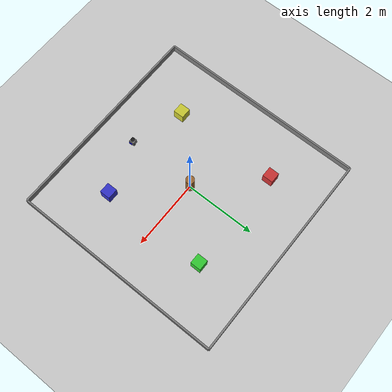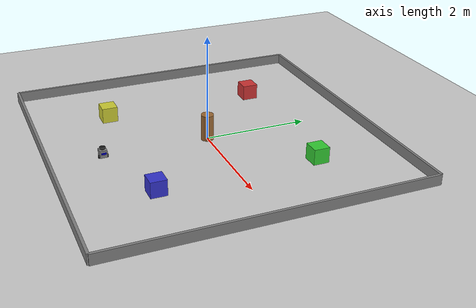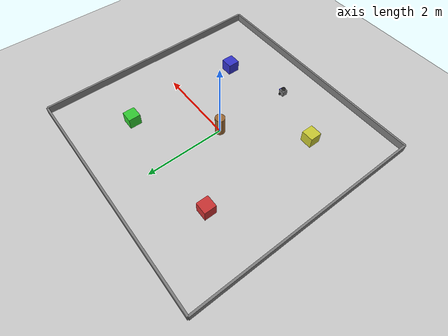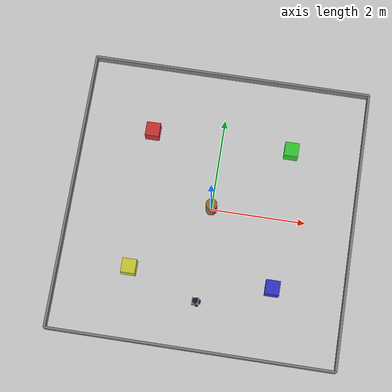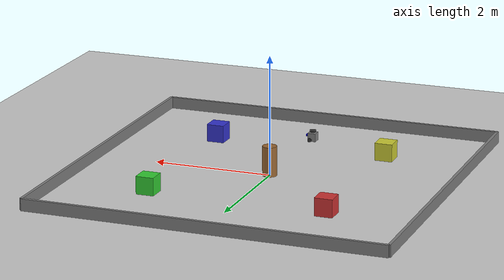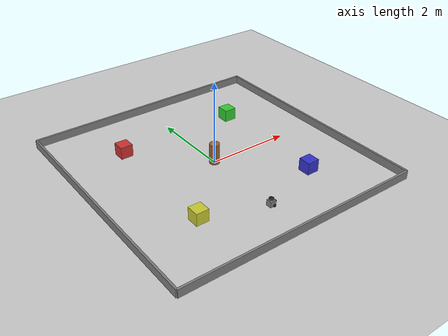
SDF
<?xml version="1.0" ?>
<sdf version="1.8">
  <world name="turtlebot3_world">

    <!-- Physics: 50 Hz is sufficient for TurtleBot3 at NAV2 speeds (0.2-0.5 m/s).
         Halving from 100 Hz saves ~40% of physics thread CPU. -->
    <physics name="50hz" type="ignored">
      <max_step_size>0.02</max_step_size>
      <real_time_factor>1.0</real_time_factor>
      <real_time_update_rate>50</real_time_update_rate>
    </physics>

    <!-- World system plugins -->
    <plugin filename="gz-sim-physics-system"             name="gz::sim::systems::Physics"/>
    <plugin filename="gz-sim-scene-broadcaster-system"   name="gz::sim::systems::SceneBroadcaster"/>
    <plugin filename="gz-sim-user-commands-system"       name="gz::sim::systems::UserCommands"/>
    <!-- Sensors system: must use ignition- prefix for ign gazebo 6 plugin search path -->
    <plugin filename="ignition-gazebo-sensors-system"    name="ignition::gazebo::systems::Sensors">
      <render_engine>ogre2</render_engine>
    </plugin>
    <plugin filename="ignition-gazebo-imu-system"        name="ignition::gazebo::systems::Imu"/>
    <plugin filename="gz-sim-contact-system"             name="gz::sim::systems::Contact"/>

    <!-- Lighting -->
    <light type="directional" name="sun">
      <cast_shadows>true</cast_shadows>
      <pose>0 0 10 0 0 0</pose>
      <diffuse>0.8 0.8 0.8 1</diffuse>
      <specular>0.2 0.2 0.2 1</specular>
      <direction>-0.5 0.1 -0.9</direction>
    </light>

    <!-- Ground plane -->
    <model name="ground_plane">
      <static>true</static>
      <link name="link">
        <collision name="collision">
          <geometry><plane><normal>0 0 1</normal><size>100 100</size></plane></geometry>
        </collision>
        <visual name="visual">
          <geometry><plane><normal>0 0 1</normal><size>100 100</size></plane></geometry>
          <material>
            <ambient>0.8 0.8 0.8 1</ambient>
            <diffuse>0.8 0.8 0.8 1</diffuse>
          </material>
        </visual>
      </link>
    </model>

    <!-- Outer walls: 6m x 6m room -->
    <model name="wall_south">
      <static>true</static>
      <pose>0 -3 0.1 0 0 0</pose>
      <link name="link">
        <collision name="col"><geometry><box><size>6 0.05 0.2</size></box></geometry></collision>
        <visual name="vis">
          <geometry><box><size>6 0.05 0.2</size></box></geometry>
          <material><ambient>0.3 0.3 0.3 1</ambient><diffuse>0.5 0.5 0.5 1</diffuse></material>
        </visual>
      </link>
    </model>

    <model name="wall_north">
      <static>true</static>
      <pose>0 3 0.1 0 0 0</pose>
      <link name="link">
        <collision name="col"><geometry><box><size>6 0.05 0.2</size></box></geometry></collision>
        <visual name="vis">
          <geometry><box><size>6 0.05 0.2</size></box></geometry>
          <material><ambient>0.3 0.3 0.3 1</ambient><diffuse>0.5 0.5 0.5 1</diffuse></material>
        </visual>
      </link>
    </model>

    <model name="wall_west">
      <static>true</static>
      <pose>-3 0 0.1 0 0 1.5708</pose>
      <link name="link">
        <collision name="col"><geometry><box><size>6 0.05 0.2</size></box></geometry></collision>
        <visual name="vis">
          <geometry><box><size>6 0.05 0.2</size></box></geometry>
          <material><ambient>0.3 0.3 0.3 1</ambient><diffuse>0.5 0.5 0.5 1</diffuse></material>
        </visual>
      </link>
    </model>

    <model name="wall_east">
      <static>true</static>
      <pose>3 0 0.1 0 0 1.5708</pose>
      <link name="link">
        <collision name="col"><geometry><box><size>6 0.05 0.2</size></box></geometry></collision>
        <visual name="vis">
          <geometry><box><size>6 0.05 0.2</size></box></geometry>
          <material><ambient>0.3 0.3 0.3 1</ambient><diffuse>0.5 0.5 0.5 1</diffuse></material>
        </visual>
      </link>
    </model>

    <!-- Interior obstacles -->
    <model name="box1">
      <static>true</static>
      <pose>-1.5 1.5 0.15 0 0 0</pose>
      <link name="link">
        <collision name="col"><geometry><box><size>0.3 0.3 0.3</size></box></geometry></collision>
        <visual name="vis">
          <geometry><box><size>0.3 0.3 0.3</size></box></geometry>
          <material><ambient>0.8 0.2 0.2 1</ambient><diffuse>0.8 0.2 0.2 1</diffuse></material>
        </visual>
      </link>
    </model>

    <model name="box2">
      <static>true</static>
      <pose>1.5 -1.5 0.15 0 0 0</pose>
      <link name="link">
        <collision name="col"><geometry><box><size>0.3 0.3 0.3</size></box></geometry></collision>
        <visual name="vis">
          <geometry><box><size>0.3 0.3 0.3</size></box></geometry>
          <material><ambient>0.2 0.2 0.8 1</ambient><diffuse>0.2 0.2 0.8 1</diffuse></material>
        </visual>
      </link>
    </model>

    <model name="box3">
      <static>true</static>
      <pose>1.5 1.5 0.15 0 0 0</pose>
      <link name="link">
        <collision name="col"><geometry><box><size>0.3 0.3 0.3</size></box></geometry></collision>
        <visual name="vis">
          <geometry><box><size>0.3 0.3 0.3</size></box></geometry>
          <material><ambient>0.2 0.8 0.2 1</ambient><diffuse>0.2 0.8 0.2 1</diffuse></material>
        </visual>
      </link>
    </model>

    <model name="box4">
      <static>true</static>
      <pose>-1.5 -1.5 0.15 0 0 0</pose>
      <link name="link">
        <collision name="col"><geometry><box><size>0.3 0.3 0.3</size></box></geometry></collision>
        <visual name="vis">
          <geometry><box><size>0.3 0.3 0.3</size></box></geometry>
          <material><ambient>0.8 0.8 0.2 1</ambient><diffuse>0.8 0.8 0.2 1</diffuse></material>
        </visual>
      </link>
    </model>

    <!-- Central column -->
    <model name="pillar">
      <static>true</static>
      <pose>0 0 0.25 0 0 0</pose>
      <link name="link">
        <collision name="col"><geometry><cylinder><radius>0.12</radius><length>0.5</length></cylinder></geometry></collision>
        <visual name="vis">
          <geometry><cylinder><radius>0.12</radius><length>0.5</length></cylinder></geometry>
          <material><ambient>0.6 0.4 0.2 1</ambient><diffuse>0.6 0.4 0.2 1</diffuse></material>
        </visual>
      </link>
    </model>

    <model name="turtlebot3">
      <pose>0 -2 0 0 0 0</pose>

      <!-- base_footprint: virtual ground-contact reference frame -->
      <link name="base_footprint">
        <pose>0 0 0 0 0 0</pose>
        <inertial><mass>0.001</mass></inertial>
      </link>

      <!-- base_link: main chassis -->
      <link name="base_link">
        <pose>0 0 0.010 0 0 0</pose>
        <inertial>
          <mass>8.2573504e-01</mass>
          <inertia>
            <ixx>2.2124416e-03</ixx><ixy>-1.2294101e-05</ixy><ixz>3.4938785e-05</ixz>
            <iyy>2.1193702e-03</iyy><iyz>-5.0120904e-06</iyz>
            <izz>2.0064271e-03</izz>
          </inertia>
        </inertial>
        <collision name="base_collision">
          <!-- Offset matches official URDF: -0.032 from link origin, 0.070 height center -->
          <pose>-0.032 0 0.070 0 0 0</pose>
          <geometry><box><size>0.140 0.140 0.143</size></box></geometry>
        </collision>
        <visual name="base_visual">
          <pose>-0.032 0 0.070 0 0 0</pose>
          <geometry><box><size>0.140 0.140 0.143</size></box></geometry>
          <material><ambient>0.4 0.4 0.4 1</ambient><diffuse>0.5 0.5 0.5 1</diffuse></material>
        </visual>
      </link>

      <joint name="base_joint" type="fixed">
        <parent>base_footprint</parent><child>base_link</child>
      </joint>

      <!-- Left wheel: abs z = 0.033 = wheel_radius (wheels just touch ground) -->
      <link name="wheel_left_link">
        <pose>0 0.08 0.033 -1.5708 0 0</pose>
        <inertial>
          <mass>2.8498940e-02</mass>
          <inertia>
            <ixx>1.1175580e-05</ixx><ixy>-4.2369783e-11</ixy><ixz>-5.9381719e-09</ixz>
            <iyy>1.1192413e-05</iyy><iyz>-1.4400107e-11</iyz><izz>2.0712558e-05</izz>
          </inertia>
        </inertial>
        <collision name="col">
          <geometry><cylinder><radius>0.033</radius><length>0.018</length></cylinder></geometry>
          <surface><friction><ode><mu>100</mu><mu2>100</mu2></ode></friction></surface>
        </collision>
        <visual name="vis">
          <geometry><cylinder><radius>0.033</radius><length>0.018</length></cylinder></geometry>
          <material><ambient>0.2 0.2 0.2 1</ambient><diffuse>0.2 0.2 0.2 1</diffuse></material>
        </visual>
      </link>

      <joint name="wheel_left_joint" type="revolute">
        <parent>base_link</parent><child>wheel_left_link</child>
        <axis><xyz>0 0 1</xyz><limit><effort>1</effort><velocity>100</velocity></limit></axis>
      </joint>

      <!-- Right wheel: abs z = 0.033 -->
      <link name="wheel_right_link">
        <pose>0 -0.08 0.033 -1.5708 0 0</pose>
        <inertial>
          <mass>2.8498940e-02</mass>
          <inertia>
            <ixx>1.1175580e-05</ixx><ixy>-4.2369783e-11</ixy><ixz>-5.9381719e-09</ixz>
            <iyy>1.1192413e-05</iyy><iyz>-1.4400107e-11</iyz><izz>2.0712558e-05</izz>
          </inertia>
        </inertial>
        <collision name="col">
          <geometry><cylinder><radius>0.033</radius><length>0.018</length></cylinder></geometry>
          <surface><friction><ode><mu>100</mu><mu2>100</mu2></ode></friction></surface>
        </collision>
        <visual name="vis">
          <geometry><cylinder><radius>0.033</radius><length>0.018</length></cylinder></geometry>
          <material><ambient>0.2 0.2 0.2 1</ambient><diffuse>0.2 0.2 0.2 1</diffuse></material>
        </visual>
      </link>

      <joint name="wheel_right_joint" type="revolute">
        <parent>base_link</parent><child>wheel_right_link</child>
        <axis><xyz>0 0 1</xyz><limit><effort>1</effort><velocity>100</velocity></limit></axis>
      </joint>

      <!-- Caster: abs z = 0.006, ball joint, zero friction -->
      <link name="caster_back_link">
        <pose>-0.081 0 0.006 0 0 0</pose>
        <inertial>
          <mass>0.005</mass>
          <inertia><ixx>0.001</ixx><iyy>0.001</iyy><izz>0.001</izz></inertia>
        </inertial>
        <collision name="col">
          <geometry><sphere><radius>0.006</radius></sphere></geometry>
          <surface><friction><ode><mu>0</mu><mu2>0</mu2></ode></friction></surface>
        </collision>
        <visual name="vis">
          <geometry><sphere><radius>0.006</radius></sphere></geometry>
          <material><ambient>0.5 0.5 0.5 1</ambient></material>
        </visual>
      </link>

      <joint name="caster_back_joint" type="ball">
        <parent>base_link</parent><child>caster_back_link</child>
      </joint>

      <!-- IMU link: abs z = 0.010 + 0.068 = 0.078 -->
      <link name="imu_link">
        <pose>-0.032 0 0.078 0 0 0</pose>
        <inertial><mass>0.001</mass><inertia><ixx>0.00001</ixx><iyy>0.00001</iyy><izz>0.00001</izz></inertia></inertial>
        <sensor name="imu" type="imu">
          <always_on>false</always_on>
          <update_rate>200</update_rate>
          <topic>imu</topic>
          <gz_frame_id>imu_link</gz_frame_id>
        </sensor>
      </link>

      <joint name="imu_joint" type="fixed">
        <parent>base_link</parent><child>imu_link</child>
      </joint>

      <!-- LiDAR link: abs z = 0.010 + 0.172 = 0.182 (official turtlebot3 position) -->
      <link name="base_scan">
        <pose>-0.032 0 0.182 0 0 0</pose>
        <inertial>
          <mass>0.114</mass>
          <inertia><ixx>0.001</ixx><iyy>0.001</iyy><izz>0.001</izz></inertia>
        </inertial>
        <collision name="col">
          <geometry><cylinder><radius>0.055</radius><length>0.0315</length></cylinder></geometry>
        </collision>
        <visual name="vis">
          <geometry><cylinder><radius>0.055</radius><length>0.0315</length></cylinder></geometry>
          <material><ambient>0.1 0.1 0.1 1</ambient><diffuse>0.1 0.1 0.1 1</diffuse></material>
        </visual>

        <sensor name="lidar" type="gpu_lidar">
          <always_on>false</always_on>
          <visualize>true</visualize>
          <update_rate>10</update_rate>
          <ray>
            <scan>
              <horizontal>
                <samples>360</samples>
                <resolution>1</resolution>
                <min_angle>-3.14159265</min_angle>
                <max_angle>3.14159265</max_angle>
              </horizontal>
            </scan>
            <range>
              <min>0.12</min>
              <max>3.5</max>
              <resolution>0.015</resolution>
            </range>
            <noise>
              <type>gaussian</type>
              <mean>0.0</mean>
              <stddev>0.01</stddev>
            </noise>
          </ray>
          <topic>scan</topic>
          <gz_frame_id>base_scan</gz_frame_id>
        </sensor>
      </link>

      <joint name="scan_joint" type="fixed">
        <parent>base_link</parent><child>base_scan</child>
      </joint>

      <!-- Camera link: abs z = 0.010 + 0.094 = 0.104, front of robot -->
      <link name="camera_link">
        <pose>0.064 0 0.104 0 0 0</pose>
        <inertial>
          <mass>0.015</mass>
          <inertia><ixx>0.0001</ixx><iyy>0.0001</iyy><izz>0.0001</izz></inertia>
        </inertial>
        <collision name="col">
          <geometry><box><size>0.025 0.090 0.025</size></box></geometry>
        </collision>
        <visual name="vis">
          <geometry><box><size>0.025 0.090 0.025</size></box></geometry>
          <material><ambient>0.0 0.0 0.8 1</ambient><diffuse>0.0 0.0 0.8 1</diffuse></material>
        </visual>

        <sensor name="camera" type="camera">
          <always_on>true</always_on>
          <update_rate>10</update_rate>
          <camera>
            <horizontal_fov>1.3962634</horizontal_fov>
            <image>
              <width>640</width>
              <height>480</height>
              <format>R8G8B8</format>
            </image>
            <clip>
              <near>0.02</near>
              <far>300</far>
            </clip>
            <noise>
              <type>gaussian</type>
              <mean>0.0</mean>
              <stddev>0.007</stddev>
            </noise>
          </camera>
          <topic>camera/image_raw</topic>
          <gz_frame_id>camera_link</gz_frame_id>
        </sensor>
      </link>

      <joint name="camera_joint" type="fixed">
        <parent>base_link</parent><child>camera_link</child>
      </joint>

      <!-- Differential drive -->
      <plugin filename="gz-sim-diff-drive-system" name="gz::sim::systems::DiffDrive">
        <left_joint>wheel_left_joint</left_joint>
        <right_joint>wheel_right_joint</right_joint>
        <wheel_separation>0.160</wheel_separation>
        <wheel_radius>0.033</wheel_radius>
        <odom_publish_frequency>20</odom_publish_frequency>
        <topic>cmd_vel</topic>
        <odom_topic>odom</odom_topic>
        <tf_topic>tf</tf_topic>
        <frame_id>odom</frame_id>
        <child_frame_id>base_footprint</child_frame_id>
        <min_acceleration>-1</min_acceleration>
        <max_acceleration>1</max_acceleration>
      </plugin>

      <!-- Joint state publisher -->
      <plugin filename="gz-sim-joint-state-publisher-system" name="gz::sim::systems::JointStatePublisher">
        <topic>joint_states</topic>
        <joint_name>wheel_left_joint</joint_name>
        <joint_name>wheel_right_joint</joint_name>
      </plugin>

    </model>

  </world>
</sdf>
